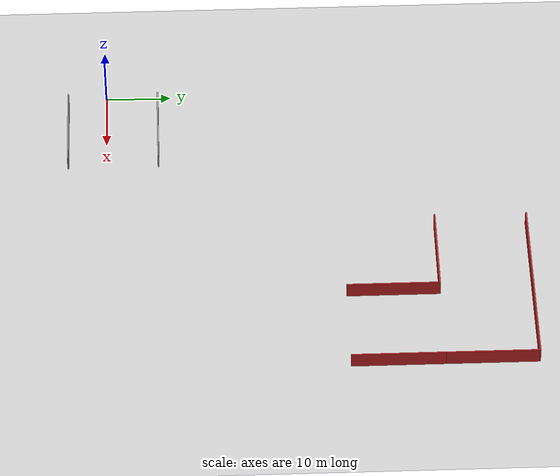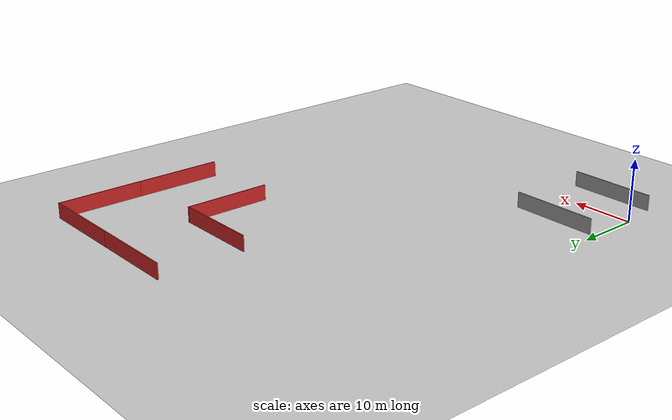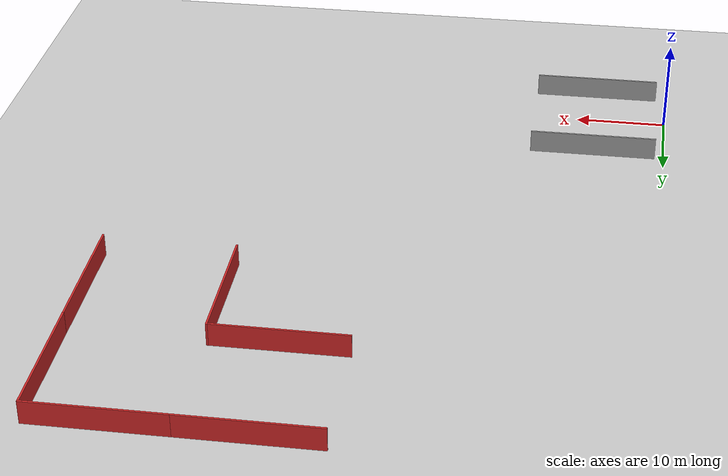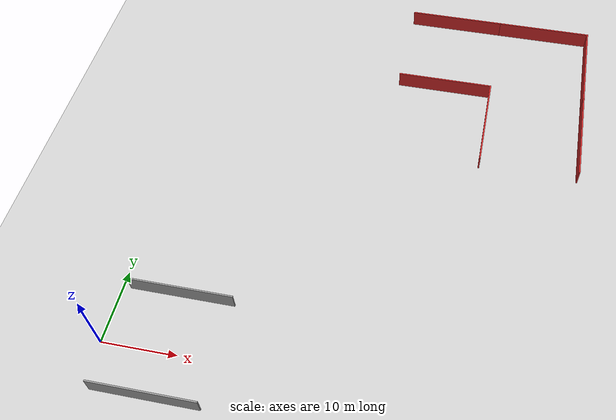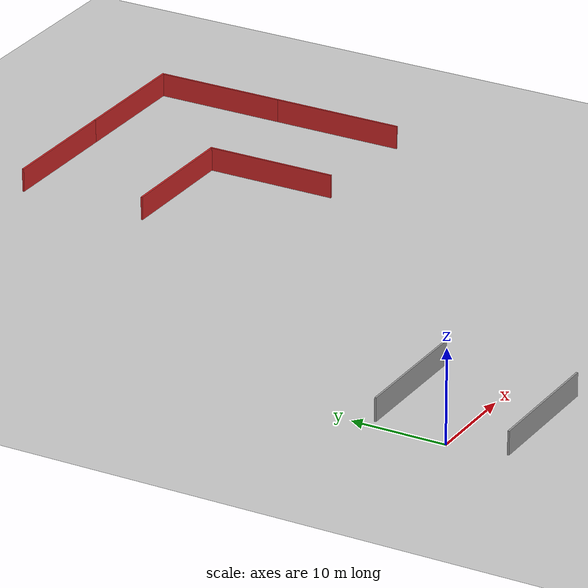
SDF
<sdf version="1.4">
 <world name="default">
  <light name="sun" type="directional">
   <pose>0 0 10 0 -0 0</pose>
   <diffuse>0.8 0.8 0.8 1</diffuse>
   <specular>0.2 0.2 0.2 1</specular>
   <attenuation>
    <range>1000</range>
    <constant>0.9</constant>
    <linear>0.01</linear>
    <quadratic>0.001</quadratic>
   </attenuation>
   <direction>-0.5 0.1 -0.9</direction>
  </light>
  <model name="ground_plane">
   <static>1</static>
   <link name="link">
    <collision name="collision">
     <geometry><plane><normal>0 0 1</normal><size>100 100</size></plane></geometry>
     <surface><friction><ode><mu>100</mu><mu2>50</mu2></ode></friction></surface>
    </collision>
    <visual name="visual">
     <cast_shadows>0</cast_shadows>
     <geometry><plane><normal>0 0 1</normal><size>100 100</size></plane></geometry>
     <material>
      <script><uri>file://media/materials/scripts/gazebo.material</uri><name>Gazebo/Grey</name></script>
     </material>
    </visual>
    <velocity_decay><linear>0</linear><angular>0</angular></velocity_decay>
   </link>
  </model>
  <physics type="ode">
   <max_step_size>0.001</max_step_size>
   <real_time_factor>1</real_time_factor>
   <real_time_update_rate>1000</real_time_update_rate>
   <gravity>0 0 -9.8</gravity>
  </physics>
  <scene><ambient>0.4 0.4 0.4 1</ambient><background>0.7 0.7 0.7 1</background><shadows>1</shadows></scene>
  <spherical_coordinates>
   <surface_model>EARTH_WGS84</surface_model>
   <latitude_deg>0</latitude_deg>
   <longitude_deg>0</longitude_deg>
   <elevation>0</elevation>
   <heading_deg>0</heading_deg>
  </spherical_coordinates>
  <model name="model">
   <link name="Wall_0">
    <collision name="Wall_0_Collision">
     <geometry><box><size>14 0.2 2.5</size></box></geometry>
     <pose>0 0 1.25 0 -0 0</pose>
    </collision>
    <visual name="Wall_0_Visual">
     <pose>0 0 1.25 0 -0 0</pose>
     <geometry><box><size>14 0.2 2.5</size></box></geometry>
     <material>
      <script><uri>file://media/materials/scripts/gazebo.material</uri><name>Gazebo/Grey</name></script>
     </material>
    </visual>
    <velocity_decay><linear>0</linear><angular>0</angular></velocity_decay>
    <pose>0 7 0 0 -0 0</pose>
   </link>
   <link name="Wall_2">
    <collision name="Wall_2_Collision">
     <geometry><box><size>14 0.2 2.5</size></box></geometry>
     <pose>0 0 1.25 0 -0 0</pose>
    </collision>
    <visual name="Wall_2_Visual">
     <pose>0 0 1.25 0 -0 0</pose>
     <geometry><box><size>14 0.2 2.5</size></box></geometry>
     <material>
      <script><uri>file://media/materials/scripts/gazebo.material</uri><name>Gazebo/Grey</name></script>
     </material>
    </visual>
    <velocity_decay><linear>0</linear><angular>0</angular></velocity_decay>
    <pose>0 -7 0 0 -0 0</pose>
   </link>
   <static>1</static>
   <pose>8 1 0 0 -0 0</pose>
  </model>
  <model name="right_angle_turn">
   <link name="Wall_0">
    <collision name="Wall_0_Collision">
     <geometry><box><size>14.1 0.2 2.5</size></box></geometry>
     <pose>0 0 1.25 0 -0 0</pose>
    </collision>
    <visual name="Wall_0_Visual">
     <pose>0 0 1.25 0 -0 0</pose>
     <geometry><box><size>14.1 0.2 2.5</size></box></geometry>
     <material>
      <script>
       <uri>model://materials/scripts</uri>
       <uri>model://materials/textures</uri>
       <name>vrc/red_wall_x4</name>
      </script>
     </material>
    </visual>
    <velocity_decay><linear>0</linear><angular>0</angular></velocity_decay>
    <pose>0 -6.95 0 0 0 -1.5708</pose>
   </link>
   <link name="Wall_10">
    <collision name="Wall_10_Collision">
     <geometry><box><size>13.8 0.2 2.5</size></box></geometry>
     <pose>0 0 1.25 0 -0 0</pose>
    </collision>
    <visual name="Wall_10_Visual">
     <pose>0 0 1.25 0 -0 0</pose>
     <geometry><box><size>13.8 0.2 2.5</size></box></geometry>
     <material>
      <script>
       <uri>model://materials/scripts</uri>
       <uri>model://materials/textures</uri>
       <name>vrc/red_wall_x4</name>
      </script>
     </material>
    </visual>
    <velocity_decay><linear>0</linear><angular>0</angular></velocity_decay>
    <pose>14 7 0 0 0 -1.5708</pose>
   </link>
   <link name="Wall_2">
    <collision name="Wall_2_Collision">
     <geometry><box><size>13.9 0.2 2.5</size></box></geometry>
     <pose>0 0 1.25 0 -0 0</pose>
    </collision>
    <visual name="Wall_2_Visual">
     <pose>0 0 1.25 0 -0 0</pose>
     <geometry><box><size>13.9 0.2 2.5</size></box></geometry>
     <material>
      <script>
       <uri>model://materials/scripts</uri>
       <uri>model://materials/textures</uri>
       <name>vrc/red_wall_x4</name>
      </script>
     </material>
    </visual>
    <velocity_decay><linear>0</linear><angular>0</angular></velocity_decay>
    <pose>-7.05 0 0 0 -0 3.14159</pose>
   </link>
   <link name="Wall_4">
    <collision name="Wall_4_Collision">
     <geometry><box><size>14.1 0.2 2.5</size></box></geometry>
     <pose>0 0 1.25 0 -0 0</pose>
    </collision>
    <visual name="Wall_4_Visual">
     <pose>0 0 1.25 0 -0 0</pose>
     <geometry><box><size>14.1 0.2 2.5</size></box></geometry>
     <material>
      <script>
       <uri>model://materials/scripts</uri>
       <uri>model://materials/textures</uri>
       <name>vrc/red_wall_x4</name>
      </script>
     </material>
    </visual>
    <velocity_decay><linear>0</linear><angular>0</angular></velocity_decay>
    <pose>14 -6.95 0 0 -0 1.5708</pose>
   </link>
   <link name="Wall_6">
    <collision name="Wall_6_Collision">
     <geometry><box><size>14.1 0.2 2.5</size></box></geometry>
     <pose>0 0 1.25 0 -0 0</pose>
    </collision>
    <visual name="Wall_6_Visual">
     <pose>0 0 1.25 0 -0 0</pose>
     <geometry><box><size>14.1 0.2 2.5</size></box></geometry>
     <material>
      <script>
       <uri>model://materials/scripts</uri>
       <uri>model://materials/textures</uri>
       <name>vrc/red_wall_x4</name>
      </script>
     </material>
    </visual>
    <velocity_decay><linear>0</linear><angular>0</angular></velocity_decay>
    <pose>-6.95 14 0 0 -0 0</pose>
   </link>
   <link name="Wall_8">
    <collision name="Wall_8_Collision">
     <geometry><box><size>14 0.2 2.5</size></box></geometry>
     <pose>0 0 1.25 0 -0 0</pose>
    </collision>
    <visual name="Wall_8_Visual">
     <pose>0 0 1.25 0 -0 0</pose>
     <geometry><box><size>14 0.2 2.5</size></box></geometry>
     <material>
      <script>
       <uri>model://materials/scripts</uri>
       <uri>model://materials/textures</uri>
       <name>vrc/red_wall_x4</name>
      </script>
     </material>
    </visual>
    <velocity_decay><linear>0</linear><angular>0</angular></velocity_decay>
    <pose>7.1 14 0 0 -0 0</pose>
   </link>
   <static>1</static>
   <pose>43 50 0 0 -0 0</pose>
  </model>
 </world>
</sdf>
